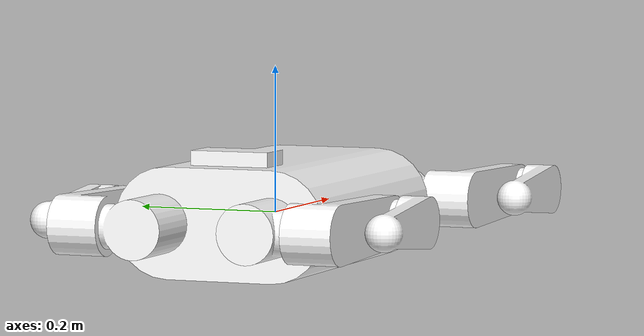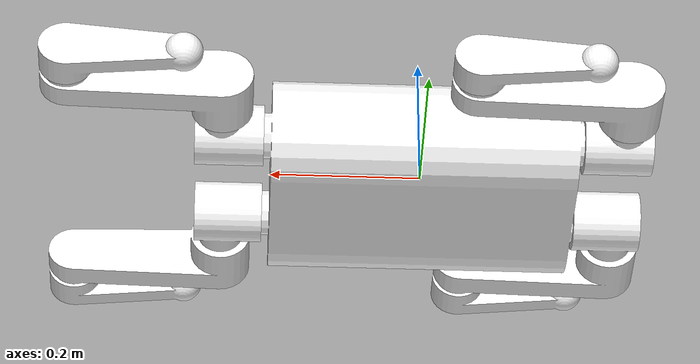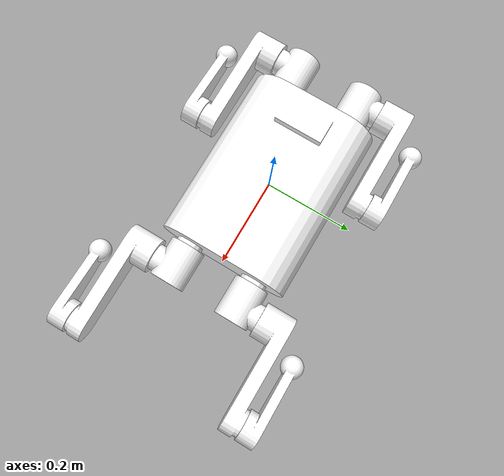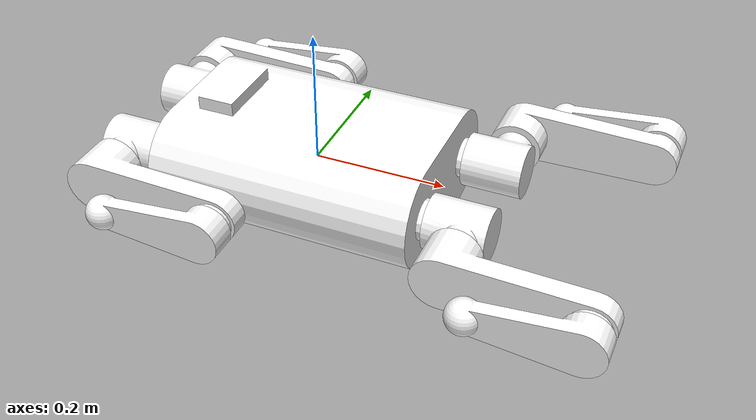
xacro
<?xml version="1.0" encoding="utf-8"?>
<robot name="horse2" xmlns:xacro="http://www.ros.org/wiki/xacro">
  <!--moca zuni zuidaliju zuidasudu-->
  <xacro:property name="fric" value="0.5"/>
  <xacro:property name="damp" value="0.5"/>
  <xacro:property name="effort" value="200"/>
  <xacro:property name="velcocity" value="10"/>
  <link
    name="base_link">
    <inertial>
      <origin
        xyz="-0.000988270498048556 0.000622244387660192 2.86975633108087E-18"
        rpy="0 0 0" />
      <mass
        value="16.5288754771647" />
      <inertia
        ixx="0.130459190161259"
        ixy="0.00137831063792757"
        ixz="-2.47989981163362E-18"
        iyy="0.334872378601923"
        iyz="2.23624092180754E-18"
        izz="0.259939977954239" />
    </inertial>
    <visual>
      <origin
        xyz="0 0 0"
        rpy="0 0 0" />
      <geometry>
        <mesh
          filename="package://horse2/meshes/base_link.STL" />
      </geometry>
      <material
        name="">
        <color
          rgba="1 1 1 1" />
      </material>
    </visual>
    <collision>
      <origin
        xyz="0 0 0"
        rpy="0 0 0" />
      <geometry>
        <mesh
          filename="package://horse2/meshes/base_link.STL" />
      </geometry>
    </collision>
  </link>
  <link
    name="zuoqian1">
    <inertial>
      <origin
        xyz="0.0509550524820431 4.33425945887953E-09 0.0101844838497848"
        rpy="0 0 0" />
      <mass
        value="0.489309819089716" />
      <inertia
        ixx="0.000583495928452911"
        ixy="-1.92180252630636E-10"
        ixz="-2.01566843678888E-05"
        iyy="0.000638747104738508"
        iyz="-5.61284646765977E-10"
        izz="0.000437849815076284" />
    </inertial>
    <visual>
      <origin
        xyz="0 0 0"
        rpy="0 0 0" />
      <geometry>
        <mesh
          filename="package://horse2/meshes/zuoqian1.STL" />
      </geometry>
      <material
        name="">
        <color
          rgba="1 1 1 1" />
      </material>
    </visual>
    <collision>
      <origin
        xyz="0 0 0"
        rpy="0 0 0" />
      <geometry>
        <mesh
          filename="package://horse2/meshes/zuoqian1.STL" />
      </geometry>
    </collision>
  </link>
  <joint
    name="zuoqian1j"
    type="continuous">
    <origin
      xyz="-0.21 -0.08 0"
      rpy="-1.5708 0 3.1416" />
    <parent
      link="base_link" />
    <child
      link="zuoqian1" />
    <axis
      xyz="1 0 0" />
    <limit
      lower="3.14"
      upper="-3.14"
      effort="${effort}"
      velocity="${velcocity}" />
    <dynamics
      damping="${damp}"
      friction="${fric}" />
  </joint>
  <link
    name="zuoqian2">
    <inertial>
      <origin
        xyz="0.0887288713166056 -2.03959904184326E-17 -0.052603023717002"
        rpy="0 0 0" />
      <mass
        value="0.812601884733516" />
      <inertia
        ixx="0.000625189892188913"
        ixy="3.48217414854764E-19"
        ixz="0.000681762991461079"
        iyy="0.00586246560227409"
        iyz="5.52997151947257E-20"
        izz="0.00593067217164617" />
    </inertial>
    <visual>
      <origin
        xyz="0 0 0"
        rpy="0 0 0" />
      <geometry>
        <mesh
          filename="package://horse2/meshes/zuoqian2.STL" />
      </geometry>
      <material
        name="">
        <color
          rgba="1 1 1 1" />
      </material>
    </visual>
    <collision>
      <origin
        xyz="0 0 0"
        rpy="0 0 0" />
      <geometry>
        <mesh
          filename="package://horse2/meshes/zuoqian2.STL" />
      </geometry>
    </collision>
  </link>
  <joint
    name="zuoqian2j"
    type="continuous">
    <origin
      xyz="0.055 0 0.05"
      rpy="3.1416 0 3.1416" />
    <parent
      link="zuoqian1" />
    <child
      link="zuoqian2" />
    <axis
      xyz="0 0 1" />
    <limit
      lower="3.14"
      upper="-3.14"
      effort="${effort}"
      velocity="${velcocity}" />
    <dynamics
      damping="${damp}"
      friction="${fric}" />
  </joint>
  <link
    name="zuoqian3">
    <inertial>
      <origin
        xyz="0.0664819271210861 3.91078739817153E-13 -0.0285031648956901"
        rpy="0 0 0" />
      <mass
        value="0.272847000302159" />
      <inertia
        ixx="9.67069309571996E-05"
        ixy="-2.72518319677417E-15"
        ixz="2.71516914095803E-05"
        iyy="0.00105759445138729"
        iyz="-1.21879774193722E-13"
        izz="0.00110896046039494" />
    </inertial>
    <visual>
      <origin
        xyz="0 0 0"
        rpy="0 0 0" />
      <geometry>
        <mesh
          filename="package://horse2/meshes/zuoqian3.STL" />
      </geometry>
      <material
        name="">
        <color
          rgba="1 1 1 1" />
      </material>
    </visual>
    <collision>
      <origin
        xyz="0 0 0"
        rpy="0 0 0" />
      <geometry>
        <mesh
          filename="package://horse2/meshes/zuoqian3.STL" />
      </geometry>
    </collision>
  </link>
  <joint
    name="zuoqian3j"
    type="continuous">
    <origin
      xyz="0.2 0 -0.08"
      rpy="0 0 3.1416" />
    <parent
      link="zuoqian2" />
    <child
      link="zuoqian3" />
    <axis
      xyz="0 0 1" />
    <limit
      lower="3.14"
      upper="-3.14"
      effort="${effort}"
      velocity="${velcocity}" />
    <dynamics
      damping="${damp}"
      friction="${fric}" />
  </joint>
  <link
    name="zuohou1">
    <inertial>
      <origin
        xyz="0.0509550524820431 4.33425945010709E-09 0.0101844838497848"
        rpy="0 0 0" />
      <mass
        value="0.489309819089716" />
      <inertia
        ixx="0.000583495928452911"
        ixy="-1.92180252596408E-10"
        ixz="-2.01566843678887E-05"
        iyy="0.000638747104738507"
        iyz="-5.6128464673609E-10"
        izz="0.000437849815076283" />
    </inertial>
    <visual>
      <origin
        xyz="0 0 0"
        rpy="0 0 0" />
      <geometry>
        <mesh
          filename="package://horse2/meshes/zuohou1.STL" />
      </geometry>
      <material
        name="">
        <color
          rgba="1 1 1 1" />
      </material>
    </visual>
    <collision>
      <origin
        xyz="0 0 0"
        rpy="0 0 0" />
      <geometry>
        <mesh
          filename="package://horse2/meshes/zuohou1.STL" />
      </geometry>
    </collision>
  </link>
  <joint
    name="zuohou1j"
    type="continuous">
    <origin
      xyz="0.21 -0.08 0"
      rpy="1.5708 0 0" />
    <parent
      link="base_link" />
    <child
      link="zuohou1" />
    <axis
      xyz="1 0 0" />
    <limit
      lower="3.14"
      upper="-3.14"
      effort="${effort}"
      velocity="${velcocity}" />
    <dynamics
      damping="${damp}"
      friction="${fric}" />
  </joint>
  <link
    name="zuohou2">
    <inertial>
      <origin
        xyz="0.0937288713166055 -8.71848613381986E-18 -0.102603023717002"
        rpy="0 0 0" />
      <mass
        value="0.812601884733515" />
      <inertia
        ixx="0.000625189892188908"
        ixy="2.95697734599226E-19"
        ixz="0.000681762991461077"
        iyy="0.00586246560227408"
        iyz="5.38461284579359E-20"
        izz="0.00593067217164617" />
    </inertial>
    <visual>
      <origin
        xyz="0 0 0"
        rpy="0 0 0" />
      <geometry>
        <mesh
          filename="package://horse2/meshes/zuohou2.STL" />
      </geometry>
      <material
        name="">
        <color
          rgba="1 1 1 1" />
      </material>
    </visual>
    <collision>
      <origin
        xyz="0 0 0"
        rpy="0 0 0" />
      <geometry>
        <mesh
          filename="package://horse2/meshes/zuohou2.STL" />
      </geometry>
    </collision>
  </link>
  <joint
    name="zuohou2j"
    type="continuous">
    <origin
      xyz="0.05 0 0"
      rpy="3.1416 0 0" />
    <parent
      link="zuohou1" />
    <child
      link="zuohou2" />
    <axis
      xyz="0 0 1" />
    <limit
      lower="3.14"
      upper="-3.14"
      effort="${effort}"
      velocity="${velcocity}" />
    <dynamics
      damping="${damp}"
      friction="${fric}" />
  </joint>
  <link
    name="zuohou3">
    <inertial>
      <origin
        xyz="0.066481927121086 3.91075151066432E-13 -0.0285031648956901"
        rpy="0 0 0" />
      <mass
        value="0.272847000302159" />
      <inertia
        ixx="9.67069309571996E-05"
        ixy="-2.72521448708387E-15"
        ixz="2.71516914095804E-05"
        iyy="0.00105759445138729"
        iyz="-1.21879689379952E-13"
        izz="0.00110896046039494" />
    </inertial>
    <visual>
      <origin
        xyz="0 0 0"
        rpy="0 0 0" />
      <geometry>
        <mesh
          filename="package://horse2/meshes/zuohou3.STL" />
      </geometry>
      <material
        name="">
        <color
          rgba="1 1 1 1" />
      </material>
    </visual>
    <collision>
      <origin
        xyz="0 0 0"
        rpy="0 0 0" />
      <geometry>
        <mesh
          filename="package://horse2/meshes/zuohou3.STL" />
      </geometry>
    </collision>
  </link>
  <joint
    name="zuohou3j"
    type="continuous">
    <origin
      xyz="0.205 0 -0.13"
      rpy="0 0 3.1416" />
    <parent
      link="zuohou2" />
    <child
      link="zuohou3" />
    <axis
      xyz="0 0 1" />
    <limit
      lower="3.14"
      upper="-3.14"
      effort="${effort}"
      velocity="${velcocity}" />
    <dynamics
      damping="${damp}"
      friction="${fric}" />
  </joint>
  <link
    name="youqian1">
    <inertial>
      <origin
        xyz="0.0509550524820431 4.33425945146715E-09 0.0101844838497848"
        rpy="0 0 0" />
      <mass
        value="0.489309819089716" />
      <inertia
        ixx="0.00058349592845291"
        ixy="-1.92180252611813E-10"
        ixz="-2.01566843678887E-05"
        iyy="0.000638747104738507"
        iyz="-5.61284646760859E-10"
        izz="0.000437849815076283" />
    </inertial>
    <visual>
      <origin
        xyz="0 0 0"
        rpy="0 0 0" />
      <geometry>
        <mesh
          filename="package://horse2/meshes/youqian1.STL" />
      </geometry>
      <material
        name="">
        <color
          rgba="1 1 1 1" />
      </material>
    </visual>
    <collision>
      <origin
        xyz="0 0 0"
        rpy="0 0 0" />
      <geometry>
        <mesh
          filename="package://horse2/meshes/youqian1.STL" />
      </geometry>
    </collision>
  </link>
  <joint
    name="youqian1j"
    type="continuous">
    <origin
      xyz="-0.21 0.08 0"
      rpy="1.5708 0 3.1416" />
    <parent
      link="base_link" />
    <child
      link="youqian1" />
    <axis
      xyz="1 0 0" />
    <limit
      lower="3.14"
      upper="-3.14"
      effort="${effort}"
      velocity="${velcocity}" />
    <dynamics
      damping="${damp}"
      friction="${fric}" />
  </joint>
  <link
    name="youqian2">
    <inertial>
      <origin
        xyz="0.0837288713166055 -1.49201591869211E-17 -0.102603023717002"
        rpy="0 0 0" />
      <mass
        value="0.812601884733515" />
      <inertia
        ixx="0.000625189892188917"
        ixy="2.06643247802909E-20"
        ixz="0.000681762991461079"
        iyy="0.00586246560227409"
        iyz="1.70940978767396E-20"
        izz="0.00593067217164617" />
    </inertial>
    <visual>
      <origin
        xyz="0 0 0"
        rpy="0 0 0" />
      <geometry>
        <mesh
          filename="package://horse2/meshes/youqian2.STL" />
      </geometry>
      <material
        name="">
        <color
          rgba="1 1 1 1" />
      </material>
    </visual>
    <collision>
      <origin
        xyz="0 0 0"
        rpy="0 0 0" />
      <geometry>
        <mesh
          filename="package://horse2/meshes/youqian2.STL" />
      </geometry>
    </collision>
  </link>
  <joint
    name="youqian2j"
    type="continuous">
    <origin
      xyz="0.05 0 0"
      rpy="3.1416 0 3.1416" />
    <parent
      link="youqian1" />
    <child
      link="youqian2" />
    <axis
      xyz="0 0 1" />
    <limit
      lower="3.14"
      upper="-3.14"
      effort="${effort}"
      velocity="${velcocity}" />
    <dynamics
      damping="${damp}"
      friction="${fric}" />
  </joint>
  <link
    name="youqian3">
    <inertial>
      <origin
        xyz="0.0664819271210861 3.91059908343943E-13 -0.0285031648956901"
        rpy="0 0 0" />
      <mass
        value="0.272847000302158" />
      <inertia
        ixx="9.67069309571995E-05"
        ixy="-2.72523726609804E-15"
        ixz="2.71516914095802E-05"
        iyy="0.00105759445138729"
        iyz="-1.21879671290083E-13"
        izz="0.00110896046039494" />
    </inertial>
    <visual>
      <origin
        xyz="0 0 0"
        rpy="0 0 0" />
      <geometry>
        <mesh
          filename="package://horse2/meshes/youqian3.STL" />
      </geometry>
      <material
        name="">
        <color
          rgba="1 1 1 1" />
      </material>
    </visual>
    <collision>
      <origin
        xyz="0 0 0"
        rpy="0 0 0" />
      <geometry>
        <mesh
          filename="package://horse2/meshes/youqian3.STL" />
      </geometry>
    </collision>
  </link>
  <joint
    name="youqian3j"
    type="continuous">
    <origin
      xyz="0.195 0 -0.13"
      rpy="0 0 3.1416" />
    <parent
      link="youqian2" />
    <child
      link="youqian3" />
    <axis
      xyz="0 0 1" />
    <limit
      lower="3.14"
      upper="-3.14"
      effort="${effort}"
      velocity="${velcocity}" />
    <dynamics
      damping="${damp}"
      friction="${fric}" />
  </joint>
  <link
    name="youhou1">
    <inertial>
      <origin
        xyz="0.0509550524820432 4.33425945305609E-09 0.0101844838497848"
        rpy="0 0 0" />
      <mass
        value="0.489309819089717" />
      <inertia
        ixx="0.000583495928452911"
        ixy="-1.92180252603468E-10"
        ixz="-2.01566843678888E-05"
        iyy="0.000638747104738508"
        iyz="-5.61284646702087E-10"
        izz="0.000437849815076284" />
    </inertial>
    <visual>
      <origin
        xyz="0 0 0"
        rpy="0 0 0" />
      <geometry>
        <mesh
          filename="package://horse2/meshes/youhou1.STL" />
      </geometry>
      <material
        name="">
        <color
          rgba="1 1 1 1" />
      </material>
    </visual>
    <collision>
      <origin
        xyz="0 0 0"
        rpy="0 0 0" />
      <geometry>
        <mesh
          filename="package://horse2/meshes/youhou1.STL" />
      </geometry>
    </collision>
  </link>
  <joint
    name="youhou1j"
    type="continuous">
    <origin
      xyz="0.21 0.08 0"
      rpy="-1.5708 0 0" />
    <parent
      link="base_link" />
    <child
      link="youhou1" />
    <axis
      xyz="1 0 0" />
    <limit
      lower="3.14"
      upper="-3.14"
      effort="${effort}"
      velocity="${velcocity}" />
    <dynamics
      damping="${damp}"
      friction="${fric}" />
  </joint>
  <link
    name="youhou2">
    <inertial>
      <origin
        xyz="0.0887288713166055 -5.21185689553302E-19 -0.0526030237170021"
        rpy="0 0 0" />
      <mass
        value="0.812601884733515" />
      <inertia
        ixx="0.00062518989218891"
        ixy="2.27398715784408E-20"
        ixz="0.000681762991461077"
        iyy="0.00586246560227408"
        iyz="-3.86066024992558E-21"
        izz="0.00593067217164617" />
    </inertial>
    <visual>
      <origin
        xyz="0 0 0"
        rpy="0 0 0" />
      <geometry>
        <mesh
          filename="package://horse2/meshes/youhou2.STL" />
      </geometry>
      <material
        name="">
        <color
          rgba="1 1 1 1" />
      </material>
    </visual>
    <collision>
      <origin
        xyz="0 0 0"
        rpy="0 0 0" />
      <geometry>
        <mesh
          filename="package://horse2/meshes/youhou2.STL" />
      </geometry>
    </collision>
  </link>
  <joint
    name="youhou2j"
    type="continuous">
    <origin
      xyz="0.055 0 0.05"
      rpy="3.1416 0 0" />
    <parent
      link="youhou1" />
    <child
      link="youhou2" />
    <axis
      xyz="0 0 1" />
    <limit
      lower="3.14"
      upper="-3.14"
      effort="${effort}"
      velocity="${velcocity}" />
    <dynamics
      damping="${damp}"
      friction="${fric}" />
  </joint>
  <link
    name="youhou3">
    <inertial>
      <origin
        xyz="0.0664819271210861 3.91069873528157E-13 -0.0285031648956901"
        rpy="0 0 0" />
      <mass
        value="0.272847000302159" />
      <inertia
        ixx="9.67069309571997E-05"
        ixy="-2.72510825375372E-15"
        ixz="2.715169140958E-05"
        iyy="0.00105759445138729"
        iyz="-1.21879731601025E-13"
        izz="0.00110896046039494" />
    </inertial>
    <visual>
      <origin
        xyz="0 0 0"
        rpy="0 0 0" />
      <geometry>
        <mesh
          filename="package://horse2/meshes/youhou3.STL" />
      </geometry>
      <material
        name="">
        <color
          rgba="1 1 1 1" />
      </material>
    </visual>
    <collision>
      <origin
        xyz="0 0 0"
        rpy="0 0 0" />
      <geometry>
        <mesh
          filename="package://horse2/meshes/youhou3.STL" />
      </geometry>
    </collision>
  </link>
  <joint
    name="youhou3j"
    type="continuous">
    <origin
      xyz="0.2 0 -0.08"
      rpy="0 0 3.1416" />
    <parent
      link="youhou2" />
    <child
      link="youhou3" />
    <axis
      xyz="0 0 1" />
    <limit
      lower="3.14"
      upper="-3.14"
      effort="20"
      velocity="2" />
    <dynamics
      damping="1.0"
      friction="5.0" />
  </joint>

  <!--gazebocanshu-->
  <!--kp 弹性系数，越大刚度越大
      kd 阻尼系数，减少kp带来的振荡
      mu1 是模型接触表面在一个方向上的摩擦系数
      mu2 是模型接触表面在另一个垂直方向上的摩擦系数。
  -->
  <gazebo reference="base_link">
    <kp>1000000.0</kp>
    <kd>1.0</kd>
    <mu1>0.2</mu1>
    <mu2>0.2</mu2>
    <minDepth>0.001</minDepth>
  </gazebo>

  <gazebo reference="zuoqian3">
    <kp>1000000.0</kp>
    <kd>1.0</kd>
    <mu1>0.2</mu1>
    <mu2>0.2</mu2>
    <minDepth>0.001</minDepth>
  </gazebo>

  <gazebo reference="zuohou3">

    <kp>1000000.0</kp>
    <kd>1.0</kd>
    <mu1>0.2</mu1>
    <mu2>0.2</mu2>
    <minDepth>0.001</minDepth>
  </gazebo>

  <gazebo reference="youqian3">
    <kp>1000000.0</kp>
    <kd>1.0</kd>
    <mu1>0.2</mu1>
    <mu2>0.2</mu2>
    <minDepth>0.001</minDepth>
  </gazebo>

  <gazebo reference="youhou3">
    <kp>1000000.0</kp>
    <kd>1.0</kd>
    <mu1>0.2</mu1>
    <mu2>0.2</mu2>
    <minDepth>0.001</minDepth>
  </gazebo>

    <!--zuohou-->
  <transmission name="zuohou1t">
    <type>transmission_interface/SimpleTransmission</type>
    <joint name="zuohou1j">
      <hardwareInterface>hardware_interface/EffortJointInterface</hardwareInterface>
    </joint>
    <actuator name="zuohou1a">
      <mechanicalReduction>1.0</mechanicalReduction>
      <hardwareInterface>hardware_interface/EffortJointInterface</hardwareInterface>
    </actuator>
  </transmission>

  <transmission name="zuohou2t">
    <type>transmission_interface/SimpleTransmission</type>
    <joint name="zuohou2j">
      <hardwareInterface>hardware_interface/EffortJointInterface</hardwareInterface>
    </joint>
    <actuator name="zuohou2a">
      <mechanicalReduction>1.0</mechanicalReduction>
      <hardwareInterface>hardware_interface/EffortJointInterface</hardwareInterface>
    </actuator>
  </transmission>

  <transmission name="zuohou3t">
    <type>transmission_interface/SimpleTransmission</type>
    <joint name="zuohou3j">
      <hardwareInterface>hardware_interface/EffortJointInterface</hardwareInterface>
    </joint>
    <actuator name="zuohou3a">
      <mechanicalReduction>1.0</mechanicalReduction>
      <hardwareInterface>hardware_interface/EffortJointInterface</hardwareInterface>
    </actuator>
  </transmission>

  <!--zuoqian-->
  <transmission name="zuoqian1t">
    <type>transmission_interface/SimpleTransmission</type>
    <joint name="zuoqian1j">
      <hardwareInterface>hardware_interface/EffortJointInterface</hardwareInterface>
    </joint>
    <actuator name="zuoqian1a">
      <mechanicalReduction>1.0</mechanicalReduction>
      <hardwareInterface>hardware_interface/EffortJointInterface</hardwareInterface>
    </actuator>
  </transmission>

  <transmission name="zuoqian2t">
    <type>transmission_interface/SimpleTransmission</type>
    <joint name="zuoqian2j">
      <hardwareInterface>hardware_interface/EffortJointInterface</hardwareInterface>
    </joint>
    <actuator name="zuoqian2a">
      <mechanicalReduction>1.0</mechanicalReduction>
      <hardwareInterface>hardware_interface/EffortJointInterface</hardwareInterface>
    </actuator>
  </transmission>

  <transmission name="zuoqian3t">
    <type>transmission_interface/SimpleTransmission</type>
    <joint name="zuoqian3j">
      <hardwareInterface>hardware_interface/EffortJointInterface</hardwareInterface>
    </joint>
    <actuator name="zuoqian3a">
      <mechanicalReduction>1.0</mechanicalReduction>
      <hardwareInterface>hardware_interface/EffortJointInterface</hardwareInterface>
    </actuator>
  </transmission>

  <!--youhou-->
  <transmission name="youhou1t">
    <type>transmission_interface/SimpleTransmission</type>
    <joint name="youhou1j">
      <hardwareInterface>hardware_interface/EffortJointInterface</hardwareInterface>
    </joint>
    <actuator name="youhou1a">
      <mechanicalReduction>1.0</mechanicalReduction>
      <hardwareInterface>hardware_interface/EffortJointInterface</hardwareInterface>
    </actuator>
  </transmission>

  <transmission name="youhou2t">
    <type>transmission_interface/SimpleTransmission</type>
    <joint name="youhou2j">
      <hardwareInterface>hardware_interface/EffortJointInterface</hardwareInterface>
    </joint>
    <actuator name="youhou2a">
      <mechanicalReduction>1.0</mechanicalReduction>
      <hardwareInterface>hardware_interface/EffortJointInterface</hardwareInterface>
    </actuator>
  </transmission>

  <transmission name="youhou3t">
    <type>transmission_interface/SimpleTransmission</type>
    <joint name="youhou3j">
      <hardwareInterface>hardware_interface/EffortJointInterface</hardwareInterface>
    </joint>
    <actuator name="youhou3a">
      <mechanicalReduction>1.0</mechanicalReduction>
      <hardwareInterface>hardware_interface/EffortJointInterface</hardwareInterface>
    </actuator>
  </transmission>

  <!--youqian-->
  <transmission name="youqian1t">
    <type>transmission_interface/SimpleTransmission</type>
    <joint name="youqian1j">
      <hardwareInterface>hardware_interface/EffortJointInterface</hardwareInterface>
    </joint>
    <actuator name="youqian1a">
      <mechanicalReduction>1.0</mechanicalReduction>
      <hardwareInterface>hardware_interface/EffortJointInterface</hardwareInterface>
    </actuator>
  </transmission>

  <transmission name="youqian2t">
    <type>transmission_interface/SimpleTransmission</type>
    <joint name="youqian2j">
      <hardwareInterface>hardware_interface/EffortJointInterface</hardwareInterface>
    </joint>
    <actuator name="youqian2a">
      <mechanicalReduction>1.0</mechanicalReduction>
      <hardwareInterface>hardware_interface/EffortJointInterface</hardwareInterface>
    </actuator>
  </transmission>

  <transmission name="youqian3t">
    <type>transmission_interface/SimpleTransmission</type>
    <joint name="youqian3j">
      <hardwareInterface>hardware_interface/EffortJointInterface</hardwareInterface>
    </joint>
    <actuator name="youqian3a">
      <mechanicalReduction>1.0</mechanicalReduction>
      <hardwareInterface>hardware_interface/EffortJointInterface</hardwareInterface>
    </actuator>
  </transmission>

  <gazebo>
    <plugin name="gazebo_ros_control" filename="libgazebo_ros_control.so">
      <robotNamespace>/horse2</robotNamespace>
      <robotSimType>gazebo_ros_control/DefaultRobotHWSim</robotSimType>
      <legacyModeNS>true</legacyModeNS>
    </plugin>
  </gazebo>
</robot>
